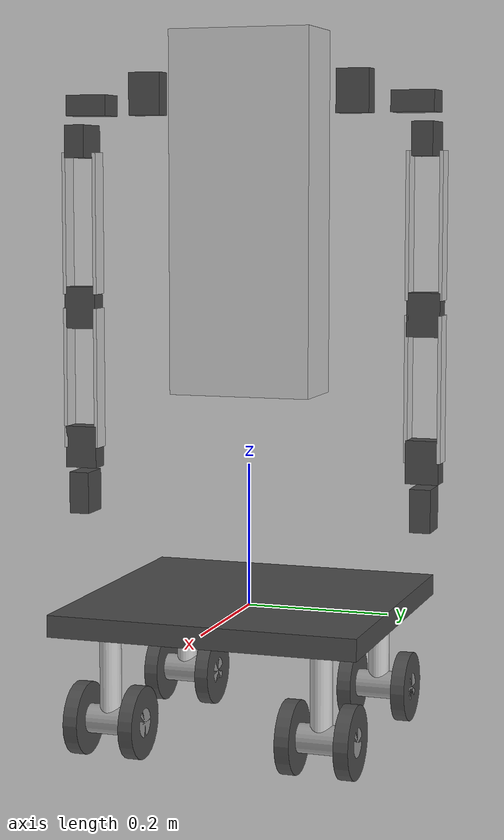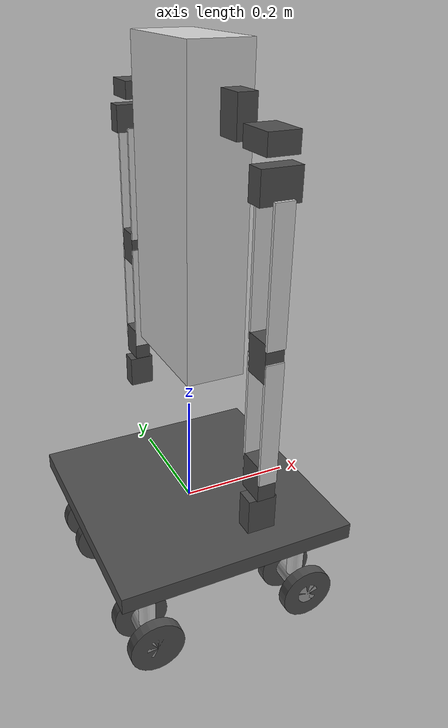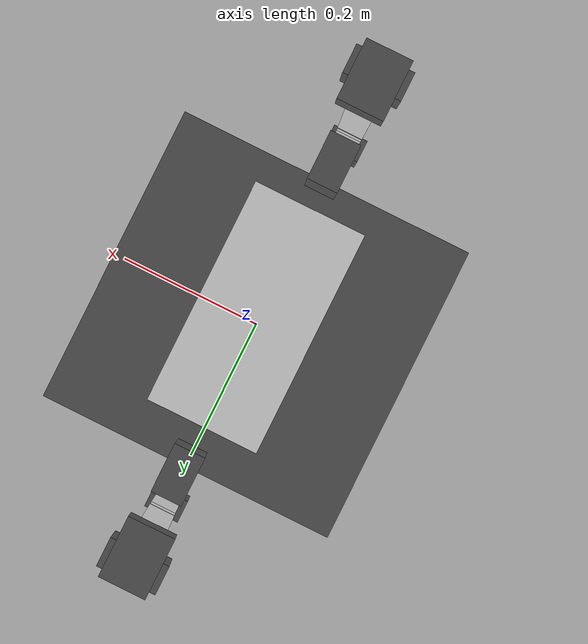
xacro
<?xml version="1.0"?>
<robot name="spur"
       xmlns:sensor="http://playerstage.sourceforge.net/gazebo/xmlschema/#sensor"
       xmlns:controller="http://playerstage.sourceforge.net/gazebo/xmlschema/#controller"
       xmlns:interface="http://playerstage.sourceforge.net/gazebo/xmlschema/#interface"
       xmlns:xacro="http://ros.org/wiki/xacro">

  <xacro:property name="ns" value="spur" />

  <!-- include materials -->
  <xacro:include filename="$(find spur_description)/urdf/materials.urdf.xacro" />

  <!-- constants -->
  <property name="M_PI" value="3.1415926535897931" />

  <property name="wheel_radius" value="0.05" />
  <property name="wheel_width" value="0.02" />

  <property name="base_width" value="0.430" />
  <property name="base_height" value="0.030" />
  <property name="caster_offset_x" value="0.15" />
  <property name="caster_offset_y" value="0.15" />
  <property name="caster_offset_z" value="0.14" />

  <!-- wheel -->
  <xacro:macro name="odom_wheel_tire" params="parent suffix offset">

    <joint name="${parent}_wheel_tire_${suffix}" type="fixed">
      <origin xyz="0 0 ${offset}" rpy="0 0 0" />
      <parent link="${parent}_wheel_link" />
      <child link="${parent}_wheel_tire_${suffix}_link" />
    </joint>

    <link name="${parent}_wheel_tire_${suffix}_link">
      <inertial>
        <mass value="1.0" />
        <origin xyz="0 0 0" />
        <inertia  ixx="1.0" ixy="0.0" ixz="0.0"
                  iyy="1.0" iyz="0.0" izz="1.0" />
      </inertial>
      <visual>
        <geometry>
          <cylinder length="${wheel_width}" radius="${wheel_radius}"/>
        </geometry>
        <material name="DarkGrey" />
      </visual>
      <collision>
        <geometry>
          <cylinder length="${wheel_width}" radius="${wheel_radius}"/>
        </geometry>
      </collision>
    </link>

    <xacro:gazebo_link name="${parent}_wheel_tire_${suffix}_link"  color="Black" />

  </xacro:macro>

  <xacro:macro name="odom_wheel_schaft" params="suffix">

    <joint name="${suffix}_wheel_joint" type="continuous">
      <axis xyz="0 0 1" />
      <limit effort="100" velocity="10"/>
      <dynamics damping="10.0" friction="0.0" />
      <origin xyz="0 0 -${caster_offset_z}" rpy="-${M_PI/2} 0 0" />
      <parent link="${suffix}_rotation_link" />
      <child link="${suffix}_wheel_link" />
    </joint>

    <xacro:simple_transmission name="${suffix}_wheel_joint" />

    <link name="${suffix}_wheel_link">
      <inertial>
        <mass value="1.0" />
        <origin xyz="0 0 0" />
        <inertia  ixx="1.0" ixy="0.0" ixz="0.0"
                  iyy="1.0" iyz="0.0" izz="1.0" />
      </inertial>
      <visual>
        <geometry>
          <cylinder length="0.100" radius="0.02"/>
        </geometry>
        <material name="Grey" />
      </visual>
      <collision>
        <geometry>
          <cylinder length="0.100" radius="0.02"/>
        </geometry>
      </collision>
    </link>

    <xacro:gazebo_link name="${suffix}_wheel_link"  color="Gray" />

  </xacro:macro>

  <xacro:macro name="odom_wheel_rotate" params="suffix">
    <joint name="${suffix}_rotation_joint" type="revolute">
      <axis xyz="0 0 1" />
      <limit lower="${-90*M_PI/180.0}" upper="${90*M_PI/180.0}" effort="300" velocity="1"/>
      <dynamics damping="50.0" friction="1.0" />
      <xacro:insert_block name="origin" />
      <parent link="base_link"/>
      <child link="${suffix}_rotation_link" />
    </joint>

    <xacro:simple_transmission name="${suffix}_rotation_joint" />

    <link name="${suffix}_rotation_link">
      <inertial>
        <mass value="1.0" />
        <origin xyz="0 0 0" />
        <inertia  ixx="1.0" ixy="0.0" ixz="0.0"
                  iyy="1.0" iyz="0.0" izz="1.0" />
      </inertial>
      <visual>
        <origin xyz="0 0 -${caster_offset_z/2}" rpy="0 0 0" />
        <geometry>
          <cylinder length="${caster_offset_z}" radius="0.015"/>
        </geometry>
        <material name="LightGrey" />
      </visual>
      <collision>
        <origin xyz="0 0 -${caster_offset_z/2}" rpy="0 0 0" />
        <geometry>
          <cylinder length="${caster_offset_z}" radius="0.015"/>
        </geometry>
      </collision>
    </link>

    <xacro:gazebo_link name="${suffix}_rotation_link"  color="LightGray" />

  </xacro:macro>

  <xacro:macro name="odom_wheel" params="suffix *origin">

    <xacro:odom_wheel_rotate suffix="${suffix}" />
    <xacro:odom_wheel_schaft suffix="${suffix}" />
    <xacro:odom_wheel_tire parent="${suffix}" suffix="l" offset="${0.05-wheel_width/2}"  />
    <xacro:odom_wheel_tire parent="${suffix}" suffix="r" offset="-${0.05-wheel_width/2}" />

  </xacro:macro>

  <!-- arm -->
  <xacro:macro name="mx_106_link" params="name *origin">
    <link name="${name}">
      <inertial>
        <mass value="1.0" />
        <xacro:insert_block name="origin" />
        <inertia  ixx="1.0" ixy="0.0" ixz="0.0"
                  iyy="1.0" iyz="0.0" izz="1.0" />
      </inertial>
      <visual>
        <xacro:insert_block name="origin" />
        <geometry>
          <box size="0.029 0.0595 0.046" />
        </geometry>
        <material name="DarkGrey" />
      </visual>
      <collision>
        <xacro:insert_block name="origin" />
        <geometry>
          <box size="0.029 0.0595 0.046" />
        </geometry>
      </collision>
    </link>

    <xacro:gazebo_link name="${name}"  color="Black" />

  </xacro:macro>

  <xacro:macro name="arm_link_element" params="name length" >
    <link name="${name}">
      <inertial>
        <mass value="1.0" />
        <origin xyz="-${length/2 - 0.0145} 0 0" />
        <inertia  ixx="1.0" ixy="0.0" ixz="0.0"
                  iyy="1.0" iyz="0.0" izz="1.0" />
      </inertial>
      <visual>
        <origin xyz="-${length/2 - 0.0145} 0 0" />
        <geometry>
          <box size="${length} 0.029 0.005" />
        </geometry>
        <material name="LightGrey" />
      </visual>
      <collision>
        <origin xyz="-${length/2 - 0.0145} 0 0"/>
        <geometry>
          <box size="${length} 0.029 0.005" />
        </geometry>
      </collision>

      <xacro:gazebo_link name="${name}"  color="LightGray" />

    </link>
  </xacro:macro>

  <xacro:macro name="arm_link_body" params="name length *origin" >
    <xacro:arm_link_element name="${name}_body_1" length="${length}"/>
    <xacro:arm_link_element name="${name}_body_2" length="${length}"/>
    <link name="${name}_body" />
    <joint name="${name}_body_1_fixed" type="fixed">
      <origin xyz="0 0 0.023" />
      <parent link="${name}_body" />
      <child link="${name}_body_1" />
    </joint>
    <joint name="${name}_body_2_fixed" type="fixed">
      <origin xyz="0 0 -0.023" />
      <parent link="${name}_body" />
      <child link="${name}_body_2" />
    </joint>
    <joint name="${name}_body_fixed" type="fixed">
      <xacro:insert_block name="origin" />
      <parent link="${name}_link" />
      <child link="${name}_body" />
    </joint>
  </xacro:macro>

  <xacro:macro name="arm_joint" params="parent name joint_origin_xyz joint_origin_rpy">

    <joint name="${name}_joint" type="revolute">
      <axis xyz="0 0 1" />
      <limit lower="${-90*M_PI/180.0}" upper="${90*M_PI/180.0}" effort="300" velocity="1"/>
      <dynamics damping="50.0" friction="1.0" />
      <origin xyz="${joint_origin_xyz}" rpy="${joint_origin_rpy}" />
      <parent link="${parent}"/>
      <child link="${name}_link" />
    </joint>

    <xacro:simple_transmission name="${name}_joint" />

  </xacro:macro>

  <xacro:macro name="arm_link" params="parent name joint_origin_xyz joint_origin_rpy
                                       link_origin_xyz
                                       link_origin_rpy">
    <xacro:arm_joint parent="${parent}" name="${name}"
                     joint_origin_xyz="${joint_origin_xyz}"
                     joint_origin_rpy="${joint_origin_rpy}" />
    <xacro:mx_106_link name="${name}_link" >
      <origin xyz="${link_origin_xyz}" rpy="${link_origin_rpy}" />
    </xacro:mx_106_link>
  </xacro:macro>

  <xacro:macro name="arm_links" params="prefix reflect" >
    <joint name="${prefix}_base_joint" type="fixed">
      <origin xyz="0 ${reflect * -0.15} 0.7" rpy="${M_PI/2} 0 0" />
      <parent link="base_link"/>
      <child link="${prefix}_base_link" />
    </joint>
    <xacro:mx_106_link name="${prefix}_base_link" >
      <origin xyz="0 0.01525 0" rpy="0 0 0" />
    </xacro:mx_106_link>
    <xacro:arm_link parent="${prefix}_base_link" name="${prefix}_shoulder_p"
                    joint_origin_xyz="0 0 0" joint_origin_rpy="0 0 0"
                    link_origin_xyz="0 0 ${reflect * (0.1 - 0.01525)}"
                    link_origin_rpy="${M_PI/2} 0 ${M_PI/2}" />
    <xacro:arm_link parent="${prefix}_shoulder_p_link" name="${prefix}_shoulder_r"
                    joint_origin_xyz="0 0 ${reflect * 0.1}" joint_origin_rpy="0 ${M_PI/2} 0"
                    link_origin_xyz="0 -0.05 0"
                    link_origin_rpy="${M_PI/2} 0 0" />
    <xacro:arm_link parent="${prefix}_shoulder_r_link" name="${prefix}_shoulder_y"
                    joint_origin_xyz="0 -0.1 0.0" joint_origin_rpy="${M_PI/2} 0 0"
                    link_origin_xyz="0 0 ${0.2 - 0.01515}"
                    link_origin_rpy="${M_PI/2} 0 ${M_PI/2}" />
    <xacro:arm_link parent="${prefix}_shoulder_y_link" name="${prefix}_elbow_p"
                    joint_origin_xyz="0 0 0.2" joint_origin_rpy="0 ${M_PI/2} 0"
                    link_origin_xyz="-${0.2 - 0.01525} 0 0"
                    link_origin_rpy="0 0 ${M_PI/2}" />
    <xacro:arm_link parent="${prefix}_elbow_p_link" name="${prefix}_wrist_p"
                    joint_origin_xyz="-0.2 0 0" joint_origin_rpy="0 0 0"
                    link_origin_xyz="-0.05 0 0"
                    link_origin_rpy="${M_PI/2} ${M_PI/2} 0" />
    <xacro:arm_joint parent="${prefix}_wrist_p_link" name="${prefix}_wrist_r"
                     joint_origin_xyz="-0.05 0 0"
                     joint_origin_rpy="-${M_PI/2} -${M_PI/2} 0" />
    <link name="${prefix}_wrist_r_link" >
      <inertial>
        <mass value="1.0" />
        <origin xyz="0 0 0" />
        <inertia  ixx="1.0" ixy="0.0" ixz="0.0"
                  iyy="1.0" iyz="0.0" izz="1.0" />
      </inertial>
    </link>

    <xacro:arm_link_body name="${prefix}_elbow_p" length="0.2" >
      <origin xyz="0 0 0" rpy="0 0 0" />
    </xacro:arm_link_body>
    <xacro:arm_link_body name="${prefix}_shoulder_y" length="0.2" >
      <origin xyz="0 0 -0.02" rpy="0 ${M_PI/2} 0" />
    </xacro:arm_link_body>

  </xacro:macro>

  <!-- base -->
  <link name="base_link">
    <inertial>
      <mass value="10.0" />
      <origin xyz="0 0 0" />
      <inertia  ixx="1.0" ixy="0.0" ixz="0.0"
                iyy="1.0" iyz="0.0" izz="1.0" />
    </inertial>
    <visual>
      <origin xyz="0 0 0" rpy="0 0 0" />
      <geometry>
        <box size="${base_width} ${base_width} ${base_height}" />
      </geometry>
      <material name="DarkGrey" />
    </visual>
    <collision>
      <origin xyz="0 0 0" rpy="0 0 0" />
      <geometry>
        <box size="${base_width} ${base_width} ${base_height}" />
      </geometry>
    </collision>
  </link>

  <xacro:gazebo_link name="base_link"  color="Black" />

  <link name="base_footprint" />
  <joint name="base_to_footprint" type="fixed" >
    <origin xyz="0 0 -0.190" rpy="0 0 0" />
    <parent link="base_link"/>
    <child link="base_footprint" />
  </joint>

  <!-- odom base -->
  <xacro:odom_wheel suffix="fl">
    <origin xyz="${caster_offset_x} ${caster_offset_y} 0.0" rpy="0 0 0" />
  </xacro:odom_wheel>
  <xacro:odom_wheel suffix="fr">
    <origin xyz="${caster_offset_x} -${caster_offset_y} 0.0" rpy="0 0 0" />
  </xacro:odom_wheel>
  <xacro:odom_wheel suffix="bl">
    <origin xyz="-${caster_offset_x} ${caster_offset_y} 0.0" rpy="0 0 0" />
  </xacro:odom_wheel>
  <xacro:odom_wheel suffix="br">
    <origin xyz="-${caster_offset_x} -${caster_offset_y} 0.0" rpy="0 0 0" />
  </xacro:odom_wheel>

  <!-- arm -->
  <xacro:arm_links prefix="rarm" reflect="1" />
  <xacro:arm_links prefix="larm" reflect="-1" />

  <!-- body -->
  <link name="body">
    <inertial>
      <mass value="1.0" />
      <origin xyz="0 0 0.25" />
      <inertia  ixx="1.0" ixy="0.0" ixz="0.0"
                iyy="1.0" iyz="0.0" izz="1.0" />
    </inertial>
    <visual>
      <origin xyz="0 0 0.25" />
      <geometry>
        <box size="0.1 0.2 0.5" />
      </geometry>
      <material name="LightGrey" />
    </visual>
    <collision>
      <origin xyz="0 0 0.25" />
      <geometry>
        <box size="0.1 0.2 0.5" />
      </geometry>
    </collision>
  </link>

  <xacro:gazebo_link name="body"  color="White" />

  <joint name="base_to_body" type="fixed" >
    <origin xyz="0 0 0.30" rpy="0 0 0" />
    <parent link="base_link"/>
    <child link="body" />
  </joint>

</robot>
